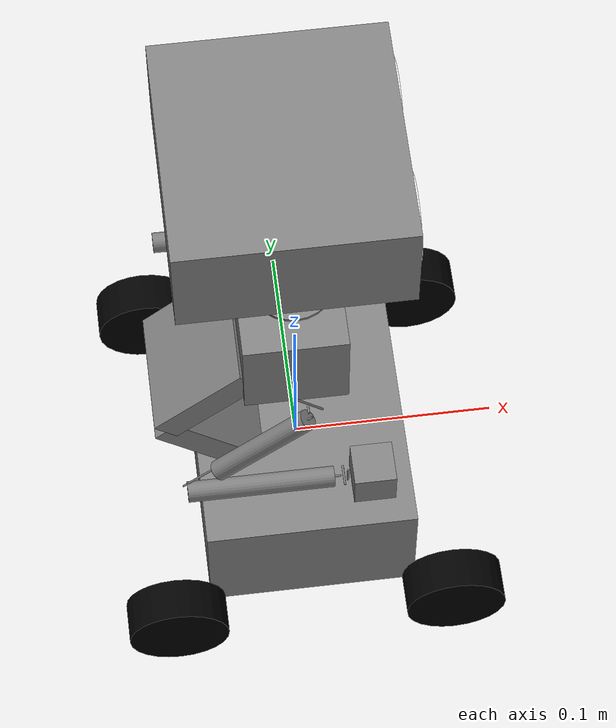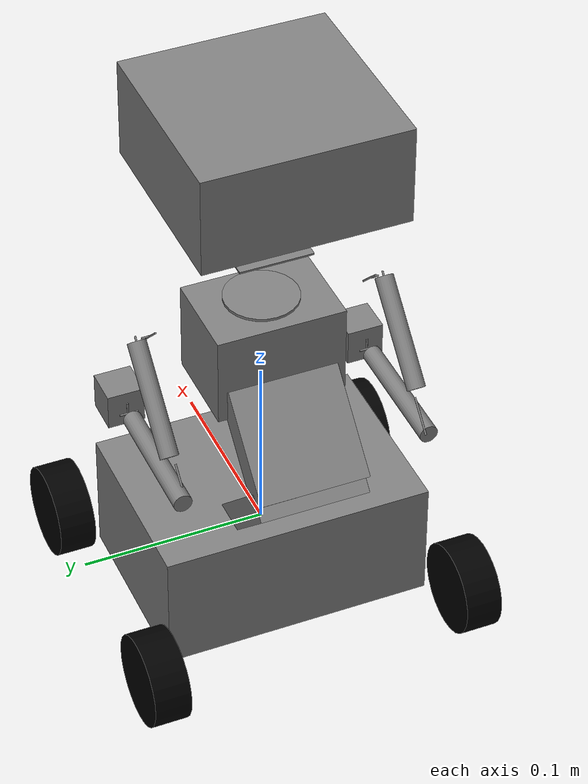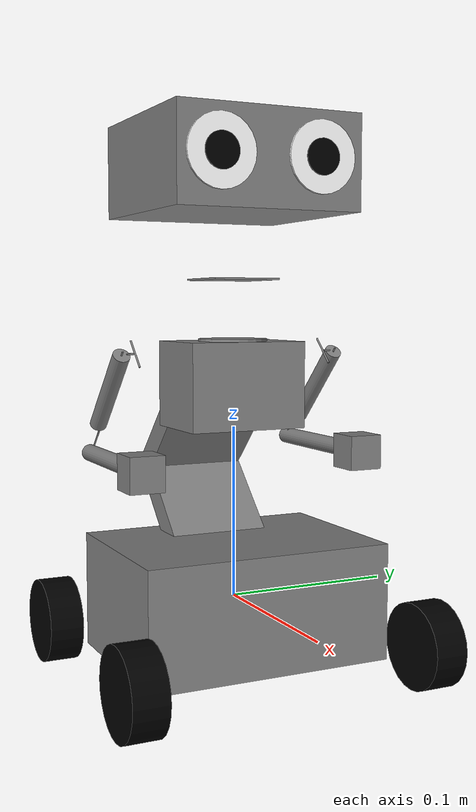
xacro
<?xml version="1.0" encoding="utf-8"?>
<robot xmlns:xacro="http://www.ros.org/wiki/xacro" name="nefive">
  <xacro:include filename="materials.xacro" />
  <xacro:include filename="base.xacro" />
  <xacro:include filename="wheels.xacro" />
  <xacro:include filename="torso.xacro" />
  <xacro:include filename="head.xacro" />
  <xacro:include filename="arms.xacro" />
</robot>

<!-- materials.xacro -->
<robot xmlns:xacro="http://www.ros.org/wiki/xacro" >
    <material name="grey">
    <color rgba="0.5 0.5 0.5 1" />
  </material>
  <material name="black">
    <color rgba="0 0 0 1" />
  </material>
  <material name="Default-Material">
    <color rgba="1 1 1 1" />
  </material>
</robot>

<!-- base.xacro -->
<robot xmlns:xacro="http://www.ros.org/wiki/xacro" >

  <link name="base_link" />
  <link name="chassis">
    <visual>
      <geometry>
        <box size="0.104 0.147 0.068" />
      </geometry>
      <material name="grey" />
    </visual>
  </link>

  <joint name="base_link_chassis_joint" type="fixed">
    <parent link="base_link" />
    <child link="chassis" />
  </joint>
  <joint name="base_link_rear_right_wheel_joint" type="continuous">
    <origin xyz="-0.07 -0.078 -0.022" />
    <parent link="chassis" />
    <child link="rear_right_wheel" />
    <axis xyz="0 1 0" />
  </joint>
  <joint name="base_link_front_right_wheel_joint" type="continuous">
    <origin xyz="0.07 -0.078 -0.022" />
    <parent link="chassis" />
    <child link="front_right_wheel" />
    <axis xyz="0 1 0" />
  </joint>
  <joint name="base_link_front_left_wheel_joint" type="continuous">
    <origin xyz="0.07 0.078 -0.022" />
    <parent link="chassis" />
    <child link="front_left_wheel" />
    <axis xyz="0 1 0" />
  </joint>
  <joint name="base_link_rear_left_wheel_joint" type="continuous">
    <origin xyz="-0.07 0.078 -0.022" />
    <parent link="chassis" />
    <child link="rear_left_wheel" />
    <axis xyz="0 1 0" />
  </joint>
</robot>

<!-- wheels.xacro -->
<robot xmlns:xacro="http://www.ros.org/wiki/xacro" >
<link name="rear_right_wheel">
    <visual>
      <origin rpy="-4.712389 0 0" xyz="0 -0.01 0" />
      <geometry>
        <cylinder length="0.02" radius="0.025" />
      </geometry>
      <material name="black" />
    </visual>
  </link>
  <link name="front_right_wheel">
    <visual>
      <origin rpy="-4.712389 0 0" xyz="0 -0.01 0" />
      <geometry>
        <cylinder length="0.02" radius="0.025" />
      </geometry>
      <material name="black" />
    </visual>
  </link>
  <link name="front_left_wheel">
    <visual>
      <origin rpy="-4.712389 0 0" xyz="0 0.01 0" />
      <geometry>
        <cylinder length="0.02" radius="0.025" />
      </geometry>
      <material name="black" />
    </visual>
  </link>
  <link name="rear_left_wheel">
    <visual>
      <origin rpy="-4.712389 0 0" xyz="0 0.01 0" />
      <geometry>
        <cylinder length="0.02" radius="0.025" />
      </geometry>
      <material name="black" />
    </visual>
  </link>
</robot>

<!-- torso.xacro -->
<robot xmlns:xacro="http://www.ros.org/wiki/xacro" >
  <link name="lower_torso">
    <visual>
      <origin xyz="0 0 0.03" />
      <geometry>
        <box size="0.015 0.06 0.06" />
      </geometry>
      <material name="grey" />
    </visual>
  </link>
  <link name="upper_torso">
    <visual>
      <origin xyz="0 0 0.03" />
      <geometry>
        <box size="0.015 0.06 0.06" />
      </geometry>
      <material name="grey" />
    </visual>
  </link>
  <link name="chest_box">
    <visual>
      <origin xyz="0.0228 0 0.0564" />
      <geometry>
        <box size="0.05 0.07 0.05" />
      </geometry>
      <material name="grey" />
    </visual>
  </link>

  <joint name="base_link_lower_torso_joint" type="fixed">
    <origin rpy="0 5.497787 0" xyz="-0.0241 0 0.0285" />
    <parent link="chassis" />
    <child link="lower_torso" />
  </joint>
  <joint name="lower_torso_upper_torso_joint" type="fixed">
    <origin rpy="0 1.570451 0" xyz="0 0 0.06" />
    <parent link="lower_torso" />
    <child link="upper_torso" />
  </joint>
  <joint name="upper_torso_chest_box_joint" type="fixed">
    <origin rpy="0 5.497787 0" xyz="0.0305 0 0.0269" />
    <parent link="upper_torso" />
    <child link="chest_box" />
  </joint>
  <joint name="chest_box_arms_joint" type="fixed">
    <origin xyz="0.025 0 0.075" />
    <parent link="chest_box" />
    <child link="arms" />
  </joint>

</robot>

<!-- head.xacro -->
<robot xmlns:xacro="http://www.ros.org/wiki/xacro" >

  <link name="head_pan">
    <visual>
      <geometry>
        <cylinder length="0.002" radius="0.02" />
      </geometry>
      <material name="grey" />
    </visual>
  </link>
  <link name="head_tilt">
    <visual>
      <geometry>
        <box size="0.04 0.04 0.001" />
      </geometry>
      <material name="grey" />
    </visual>
  </link>
  <link name="head_roll">
    <visual>
      <origin xyz="-0.0039 0 0.0283" />
      <geometry>
        <box size="0.107 0.11 0.054" />
      </geometry>
      <material name="grey" />
    </visual>
  </link>
  <link name="head" />
  <link name="eyes">
    <visual>
      <geometry>
        <cylinder length="0" radius="0" />
      </geometry>
      <material name="Default-Material" />
    </visual>
  </link>
  <link name="left_eye_ring">
    <visual>
      <origin rpy="0 1.570451 0" />
      <geometry>
        <cylinder length="0.002" radius="0.02" />
      </geometry>
      <material name="Default-Material" />
    </visual>
  </link>
  <link name="left_eye_inner">
    <visual>
      <origin rpy="0 1.570451 0" xyz="0.0006 0 0" />
      <geometry>
        <cylinder length="0.002" radius="0.01" />
      </geometry>
      <material name="black" />
    </visual>
  </link>
  <link name="left_camera_pointcloud_frame">
  </link>
  <link name="right_eye_ring">
    <visual>
      <origin rpy="0 1.570451 0" />
      <geometry>
        <cylinder length="0.002" radius="0.02" />
      </geometry>
      <material name="Default-Material" />
    </visual>
  </link>
  <link name="right_eye_inner">
    <visual>
      <origin rpy="0 1.570451 0" xyz="0.0006 0 0" />
      <geometry>
        <cylinder length="0.002" radius="0.01" />
      </geometry>
      <material name="black" />
    </visual>
  </link>
  <link name="right_camera" />

  <joint name="chest_box_head_pan_joint" type="revolute">
    <origin xyz="0.025 0 0.0819" />
    <parent link="chest_box" />
    <child link="head_pan" />
    <axis xyz="0 0 1" />
    <limit lower="-0.785398" upper="0.785398" effort="1000" velocity="1000" />
  </joint>
  <joint name="head_pan_head_tilt_joint" type="revolute">
    <origin xyz="0 0 0.035" />
    <parent link="head_pan" />
    <child link="head_tilt" />
    <axis xyz="0 -1 0" />
    <limit lower="-0.785398" upper="0.785398" effort="1000" velocity="1000" />
  </joint>
  <joint name="head_tilt_head_roll_joint" type="revolute">
    <origin xyz="0 0 0.035" />
    <parent link="head_tilt" />
    <child link="head_roll" />
    <axis xyz="-1 0 0" />
    <limit lower="-0.785398" upper="0.785398" effort="1000" velocity="1000" />
  </joint>
  <joint name="head_roll_head_joint" type="fixed">
    <parent link="head_roll" />
    <child link="head" />
  </joint>
  <joint name="head_eyes_joint" type="fixed">
    <origin xyz="0.05 0 0.03" />
    <parent link="head" />
    <child link="eyes" />
  </joint>
  <joint name="eyes_left_eye_ring_joint" type="fixed">
    <origin xyz="0 0.03 0" />
    <parent link="eyes" />
    <child link="left_eye_ring" />
  </joint>
  <joint name="left_eye_ring_left_eye_inner_joint" type="fixed">
    <parent link="left_eye_ring" />
    <child link="left_eye_inner" />
  </joint>
  <joint name="left_eye_inner_left_camera_joint" type="fixed">
    <origin rpy="-1.57 0 -1.57" />
    <parent link="left_eye_inner" />
    <child link="left_camera_pointcloud_frame" />
  </joint>
  <joint name="eyes_right_eye_ring_joint" type="fixed">
    <origin xyz="0 -0.03 0" />
    <parent link="eyes" />
    <child link="right_eye_ring" />
  </joint>
  <joint name="right_eye_ring_right_eye_inner_joint" type="fixed">
    <parent link="right_eye_ring" />
    <child link="right_eye_inner" />
  </joint>
  <joint name="right_eye_inner_right_camera_joint" type="fixed">
    <parent link="right_eye_inner" />
    <origin rpy="${-pi/2} 0 ${-pi/2}" />
    <child link="right_camera" />
  </joint>

</robot>

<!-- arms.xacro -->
<robot xmlns:xacro="http://www.ros.org/wiki/xacro" >

<link name="arms">
  </link>

  <link name="right_arm">
  </link>
    <link name="right_shoulder_tilt">
      <visual>
        <origin rpy="0 1.570451 0" />
        <geometry>
          <cylinder length="0.02" radius="0.0005" />
        </geometry>
        <material name="grey" />
      </visual>
    </link>
    <link name="right_shoulder_pan">
      <visual>
        <origin rpy="-4.712389 0 0" xyz="0 -0.002 0" />
        <geometry>
          <cylinder length="0.004" radius="0.0005" />
        </geometry>
        <material name="grey" />
      </visual>
    </link>
    <link name="right_shoulder_rotate">
      <visual>
        <origin rpy="-4.712389 0 -4.712389" xyz="0.0001 -0.002 0" />
        <geometry>
          <cylinder length="0.004" radius="0.0005" />
        </geometry>
        <material name="grey" />
      </visual>
      <visual>
        <origin rpy="0 1.570451 0" xyz="0.031 -0.002 0" />
        <geometry>
          <cylinder length="-0.06" radius="0.005" />
        </geometry>
        <material name="grey" />
      </visual>
    </link>
    <link name="right_elbow">
      <visual>
        <origin rpy="0 1.570451 0" />
        <geometry>
          <cylinder length="0.02" radius="0.0005" />
        </geometry>
        <material name="grey" />
      </visual>
    </link>
    <link name="right_forearm">
      <visual>
        <origin rpy="0 1.570451 0" xyz="0.035 -0.0025 0" />
        <geometry>
          <cylinder length="0.07" radius="0.005" />
        </geometry>
        <material name="grey" />
      </visual>
    </link>
    <link name="right_wrist_roll">
      <visual>
        <geometry>
          <cylinder length="0.01" radius="0.0005" />
        </geometry>
        <material name="grey" />
      </visual>
    </link>
    <link name="right_wrist_tilt">
      <visual>
        <geometry>
          <cylinder length="0.01" radius="0.0005" />
        </geometry>
        <material name="grey" />
      </visual>
    </link>
    <link name="right_wrist_pan">
      <visual>
        <geometry>
          <cylinder length="0.01" radius="0.0005" />
        </geometry>
        <material name="grey" />
      </visual>
    </link>
    <link name="right_hand">
      <visual>
        <geometry>
          <box size="0.02 0.02 0.02" />
        </geometry>
        <material name="grey" />
      </visual>
    </link>

  <link name="left_arm">
  </link>
  <link name="left_shoulder_tilt">
    <visual>
      <origin rpy="0 1.570451 0" />
      <geometry>
        <cylinder length="0.02" radius="0.0005" />
      </geometry>
      <material name="grey" />
    </visual>
  </link>
  <link name="left_shoulder_pan">
    <visual>
      <origin rpy="-4.712389 0 0" xyz="0 -0.002 0" />
      <geometry>
        <cylinder length="0.004" radius="0.0005" />
      </geometry>
      <material name="grey" />
    </visual>
  </link>
  <link name="left_shoulder_rotate">
    <visual>
      <origin rpy="-4.712389 0 -4.712389" xyz="0.0001 -0.002 0" />
      <geometry>
        <cylinder length="0.004" radius="0.0005" />
      </geometry>
      <material name="grey" />
    </visual>
    <visual>
      <origin rpy="0 1.570451 0" xyz="0.031 -0.002 0" />
      <geometry>
        <cylinder length="-0.06" radius="0.005" />
      </geometry>
      <material name="grey" />
    </visual>
  </link>
  <link name="left_elbow">
    <visual>
      <origin rpy="0 1.570451 0" />
      <geometry>
        <cylinder length="0.02" radius="0.0005" />
      </geometry>
      <material name="grey" />
    </visual>
  </link>
  <link name="left_forearm">
    <visual>
      <origin rpy="0 1.570451 0" xyz="0.035 -0.0025 0" />
      <geometry>
        <cylinder length="0.07" radius="0.005" />
      </geometry>
      <material name="grey" />
    </visual>
  </link>
  <link name="left_wrist_roll">
    <visual>
      <geometry>
        <cylinder length="0.01" radius="0.0005" />
      </geometry>
      <material name="grey" />
    </visual>
  </link>
  <link name="left_wrist_tilt">
    <visual>
      <geometry>
        <cylinder length="0.01" radius="0.0005" />
      </geometry>
      <material name="grey" />
    </visual>
  </link>
  <link name="left_wrist_pan">
    <visual>
      <geometry>
        <cylinder length="0.01" radius="0.0005" />
      </geometry>
      <material name="grey" />
    </visual>
  </link>
  <link name="left_hand">
    <visual>
      <geometry>
        <box size="0.02 0.02 0.02" />
      </geometry>
      <material name="grey" />
    </visual>
  </link>

  <joint name="arms_right_arm_joint" type="fixed">
    <origin xyz="0 -0.06 0" />
    <parent link="arms" />
    <child link="right_arm" />
  </joint>
  <joint name="right_arm_right_shoulder_tilt_joint" type="revolute">
    <origin rpy="0 0.785398 0" />
    <parent link="right_arm" />
    <child link="right_shoulder_tilt" />
    <axis xyz="1 0 0" />
    <limit lower="-0.610865" upper="0.436332" effort="1000" velocity="1000" />
  </joint>
  <joint name="right_shoulder_tilt_right_shoulder_pan_joint" type="revolute">
    <origin rpy="0 0.785398 0" xyz="0 -0.001 0" />
    <parent link="right_shoulder_tilt" />
    <child link="right_shoulder_pan" />
    <axis xyz="0 -1 0" />
    <limit lower="-1.570796" upper="1.570796" effort="1000" velocity="1000" />
  </joint>
  <joint name="right_shoulder_pan_right_shoulder_rotate_joint" type="revolute">
    <origin rpy="0 0.785398 0" xyz="0 -0.0048 0" />
    <parent link="right_shoulder_pan" />
    <child link="right_shoulder_rotate" />
    <axis xyz="1 0 0" />
    <limit lower="-1.570796" upper="1.570796" effort="1000" velocity="1000" />
  </joint>
  <joint name="right_shoulder_rotate_right_elbow_joint" type="revolute">
    <origin xyz="0.075 0 0" />
    <parent link="right_shoulder_rotate" />
    <child link="right_elbow" />
    <axis xyz="0 -1 0" />
    <limit lower="0" upper="0" effort="1000" velocity="1000" />
  </joint>
  <joint name="right_elbow_right_forearm_joint" type="revolute">
    <origin rpy="-3.141593 5.497787 -3.141593" xyz="0.01 0 0.0025" />
    <parent link="right_elbow" />
    <child link="right_forearm" />
    <axis xyz="0 -1 0" />
    <limit lower="0" upper="0" effort="1000" velocity="1000" />
  </joint>
  <joint name="right_forearm_right_wrist_roll_joint" type="revolute">
    <origin rpy="0 4.712734 0" xyz="0.0683 -0.0025 0" />
    <parent link="right_forearm" />
    <child link="right_wrist_roll" />
    <axis xyz="0 0 1" />
    <limit lower="-1.570796" upper="1.570796" effort="1000" velocity="1000" />
  </joint>
  <joint name="right_wrist_roll_right_wrist_tilt_joint" type="revolute">
    <origin rpy="0 1.570796 -4.712389" xyz="0 0 -0.00636" />
    <parent link="right_wrist_roll" />
    <child link="right_wrist_tilt" />
    <axis xyz="0 0 1" />
    <limit lower="-0.785398" upper="0.785398" effort="1000" velocity="1000" />
  </joint>
  <joint name="right_wrist_tilt_right_wrist_pan_joint" type="revolute">
    <origin rpy="-4.712389 0 0" xyz="0.002 0 0" />
    <parent link="right_wrist_tilt" />
    <child link="right_wrist_pan" />
    <axis xyz="0 0 1" />
    <limit lower="-0.785398" upper="0.785398" effort="1000" velocity="1000" />
  </joint>
  <joint name="right_wrist_pan_right_hand_joint" type="fixed">
    <origin xyz="0.012 0 0" />
    <parent link="right_wrist_pan" />
    <child link="right_hand" />
  </joint>
  <joint name="arms_left_arm_joint" type="fixed">
    <origin rpy="0 0 -3.141593" xyz="0 0.06 0" />
    <parent link="arms" />
    <child link="left_arm" />
  </joint>
  <joint name="left_arm_left_shoulder_tilt_joint" type="revolute">
    <origin rpy="0 5.497787 0" />
    <parent link="left_arm" />
    <child link="left_shoulder_tilt" />
    <axis xyz="1 0 0" />
    <limit lower="-0.610865" upper="0.436332" effort="1000" velocity="1000" />
  </joint>
  <joint name="left_shoulder_tilt_left_shoulder_pan_joint" type="revolute">
    <origin rpy="-3.141593 0.785398 -3.141593" xyz="0 -0.001 0" />
    <parent link="left_shoulder_tilt" />
    <child link="left_shoulder_pan" />
    <axis xyz="0 -1 0" />
    <limit lower="-1.570796" upper="1.570796" effort="1000" velocity="1000" />
  </joint>
  <joint name="left_shoulder_pan_left_shoulder_rotate_joint" type="revolute">
    <origin rpy="0 5.497787 0" xyz="0 -0.0048 0" />
    <parent link="left_shoulder_pan" />
    <child link="left_shoulder_rotate" />
    <axis xyz="1 0 0" />
    <limit lower="-1.570796" upper="1.570796" effort="1000" velocity="1000" />
  </joint>
  <joint name="left_shoulder_rotate_left_elbow_joint" type="revolute">
    <origin xyz="0.075 0 0" />
    <parent link="left_shoulder_rotate" />
    <child link="left_elbow" />
    <axis xyz="0 -1 0" />
    <limit lower="0" upper="0" effort="1000" velocity="1000" />
  </joint>
  <joint name="left_elbow_left_forearm_joint" type="revolute">
    <origin rpy="-3.141593 0.785398 -3.141593" xyz="0.01 0 0.0025" />
    <parent link="left_elbow" />
    <child link="left_forearm" />
    <axis xyz="0 -1 0" />
    <limit lower="0" upper="0" effort="1000" velocity="1000" />
  </joint>
  <joint name="left_forearm_left_wrist_roll_joint" type="revolute">
    <origin rpy="0 4.712734 0" xyz="0.0683 -0.0025 0" />
    <parent link="left_forearm" />
    <child link="left_wrist_roll" />
    <axis xyz="0 0 1" />
    <limit lower="-1.570796" upper="1.570796" effort="1000" velocity="1000" />
  </joint>
  <joint name="left_wrist_roll_left_wrist_tilt_joint" type="revolute">
    <origin rpy="0 1.570796 -4.712389" xyz="0 0 -0.00636" />
    <parent link="left_wrist_roll" />
    <child link="left_wrist_tilt" />
    <axis xyz="0 0 1" />
    <limit lower="-0.785398" upper="0.785398" effort="1000" velocity="1000" />
  </joint>
  <joint name="left_wrist_tilt_left_wrist_pan_joint" type="revolute">
    <origin rpy="-4.712389 0 0" xyz="0.002 0 0" />
    <parent link="left_wrist_tilt" />
    <child link="left_wrist_pan" />
    <axis xyz="0 0 1" />
    <limit lower="-0.785398" upper="0.785398" effort="1000" velocity="1000" />
  </joint>
  <joint name="left_wrist_pan_left_hand_joint" type="fixed">
    <origin xyz="0.012 0 0" />
    <parent link="left_wrist_pan" />
    <child link="left_hand" />
  </joint>

</robot>
